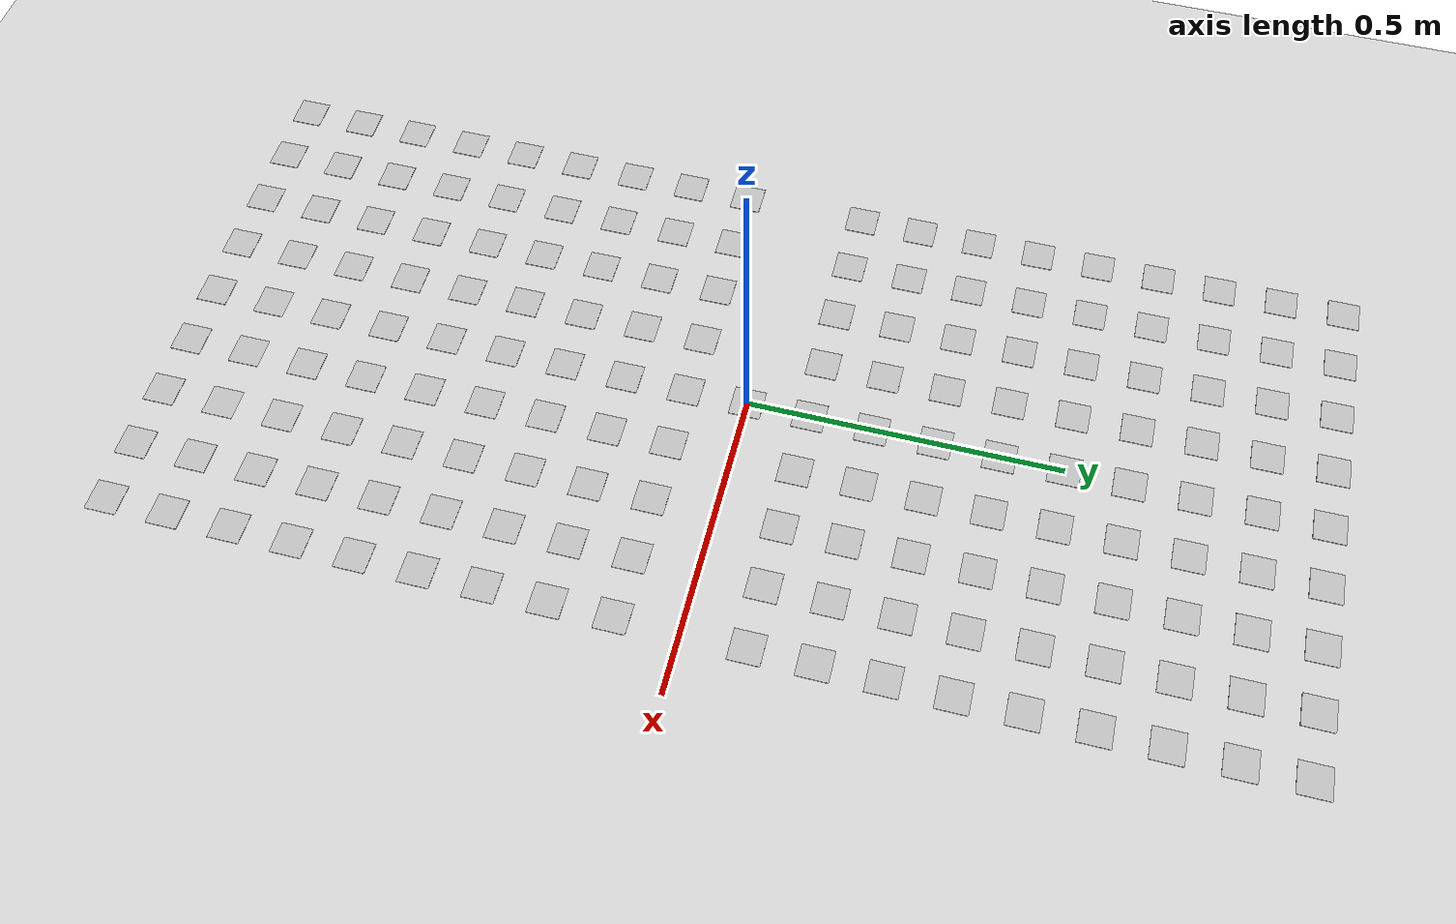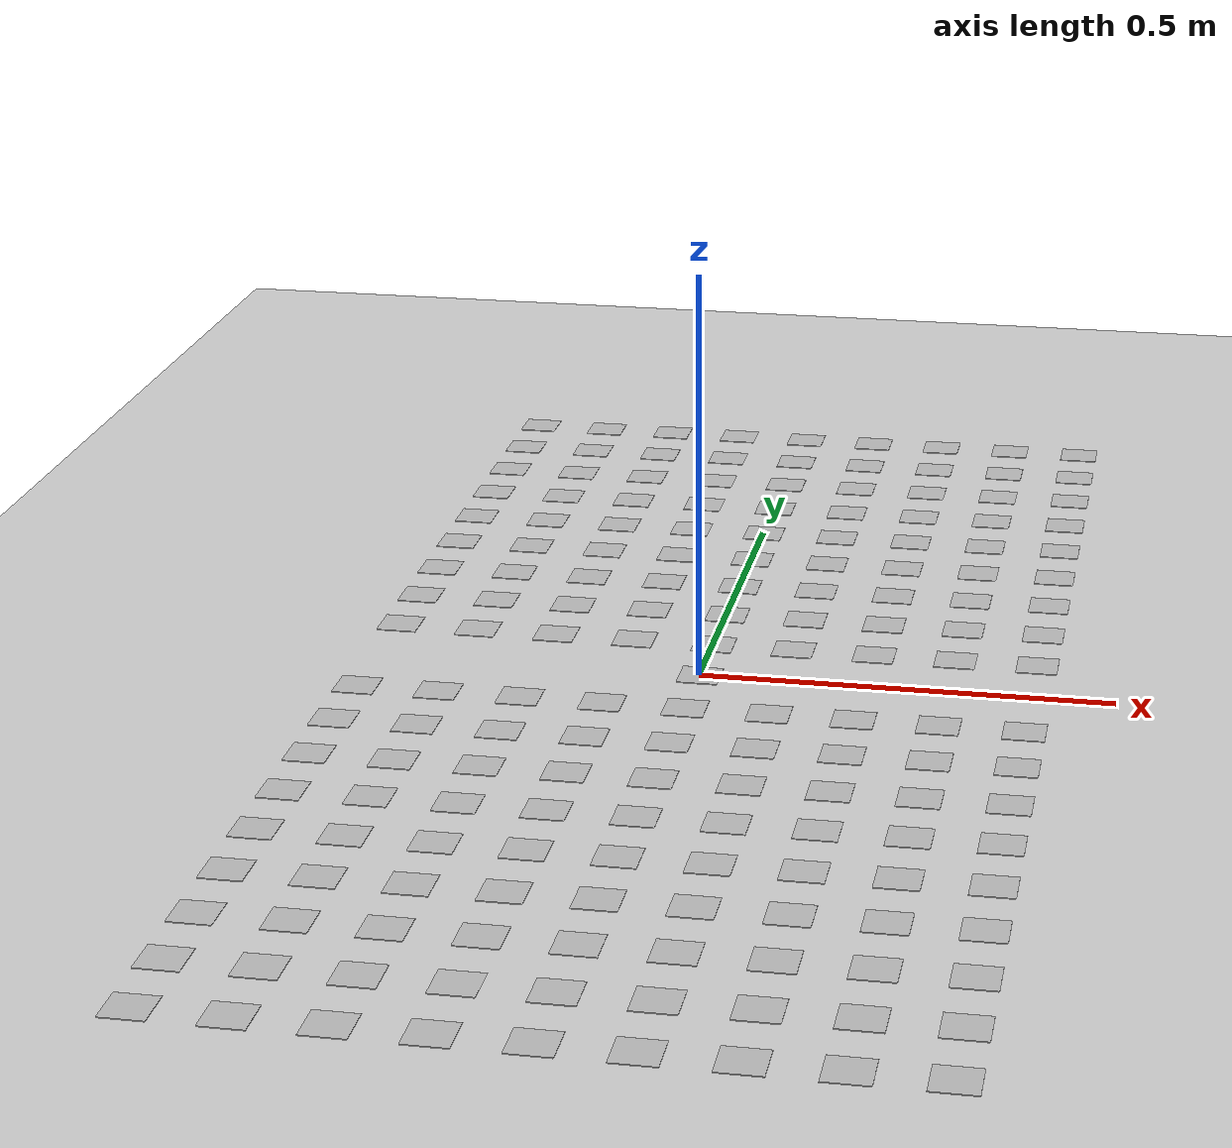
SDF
<sdf version="1.7">
 <world name="default">
  <light name="sun" type="directional">
   <pose>0 0 10 0 -0 0</pose>
   <diffuse>0.8 0.8 0.8 1</diffuse>
   <specular>0.2 0.2 0.2 1</specular>
   <attenuation>
    <range>1000</range>
    <constant>0.9</constant>
    <linear>0.01</linear>
    <quadratic>0.001</quadratic>
   </attenuation>
   <direction>-0.5 0.1 -0.9</direction>
   <spot><inner_angle>0</inner_angle><outer_angle>0</outer_angle><falloff>0</falloff></spot>
  </light>
  <model name="ground_plane">
   <static>1</static>
   <link name="link">
    <collision name="collision">
     <geometry><plane><normal>0 0 1</normal><size>100 100</size></plane></geometry>
     <surface>
      <contact><collide_bitmask>65535</collide_bitmask></contact>
      <friction><ode><mu>100</mu><mu2>50</mu2></ode></friction>
     </surface>
    </collision>
    <visual name="visual">
     <cast_shadows>0</cast_shadows>
     <geometry><plane><normal>0 0 1</normal><size>100 100</size></plane></geometry>
     <material>
      <script><uri>file://media/materials/scripts/gazebo.material</uri><name>Gazebo/Grey</name></script>
     </material>
    </visual>
   </link>
  </model>
  <gravity>0 0 -9.8</gravity>
  <magnetic_field>6e-06 2.3e-05 -4.2e-05</magnetic_field>
  <atmosphere type="adiabatic"/>
  <physics type="ode">
   <max_step_size>0.001</max_step_size>
   <real_time_factor>1</real_time_factor>
   <real_time_update_rate>1000</real_time_update_rate>
  </physics>
  <scene><ambient>0.4 0.4 0.4 1</ambient><background>0.7 0.7 0.7 1</background><shadows>1</shadows></scene>
  <spherical_coordinates>
   <surface_model>EARTH_WGS84</surface_model>
   <latitude_deg>0</latitude_deg>
   <longitude_deg>0</longitude_deg>
   <elevation>0</elevation>
   <heading_deg>0</heading_deg>
  </spherical_coordinates>
  <model name="QR01">
   <static>1</static>
   <link name="link">
    <visual name="visual">
     <geometry><mesh><uri>model://qr01/meshes/QR01.dae</uri><scale>0.1 0.1 0.1</scale></mesh></geometry>
    </visual>
   </link>
   <pose>0.025 0 0 3.14159 1.57079 -3e-06</pose>
  </model>
  <model name="QR01_clone">
   <static>1</static>
   <link name="link">
    <visual name="visual">
     <geometry><mesh><uri>model://qr01/meshes/QR01.dae</uri><scale>0.1 0.1 0.1</scale></mesh></geometry>
    </visual>
   </link>
   <pose>0.025 0.1 0 -3.14159 1.57079 -1e-06</pose>
  </model>
  <model name="QR01_clone_0">
   <static>1</static>
   <link name="link">
    <visual name="visual">
     <geometry><mesh><uri>model://qr01/meshes/QR01.dae</uri><scale>0.1 0.1 0.1</scale></mesh></geometry>
    </visual>
   </link>
   <pose>0.025 0.2 0 -3.14159 1.57079 -1e-06</pose>
  </model>
  <model name="QR01_clone_1">
   <static>1</static>
   <link name="link">
    <visual name="visual">
     <geometry><mesh><uri>model://qr01/meshes/QR01.dae</uri><scale>0.1 0.1 0.1</scale></mesh></geometry>
    </visual>
   </link>
   <pose>0.025 0.3 0 -3.14159 1.57079 -1e-06</pose>
  </model>
  <model name="QR01_clone_2">
   <static>1</static>
   <link name="link">
    <visual name="visual">
     <geometry><mesh><uri>model://qr01/meshes/QR01.dae</uri><scale>0.1 0.1 0.1</scale></mesh></geometry>
    </visual>
   </link>
   <pose>0.025 0.4 0 -3.14159 1.57079 -1e-06</pose>
  </model>
  <model name="QR01_clone_3">
   <static>1</static>
   <link name="link">
    <visual name="visual">
     <geometry><mesh><uri>model://qr01/meshes/QR01.dae</uri><scale>0.1 0.1 0.1</scale></mesh></geometry>
    </visual>
   </link>
   <pose>0.025 0.5 0 -3.14159 1.57079 -1e-06</pose>
  </model>
  <model name="QR01_clone_4">
   <static>1</static>
   <link name="link">
    <visual name="visual">
     <geometry><mesh><uri>model://qr01/meshes/QR01.dae</uri><scale>0.1 0.1 0.1</scale></mesh></geometry>
    </visual>
   </link>
   <pose>0.025 0.6 0 -3.14159 1.57079 -1e-06</pose>
  </model>
  <model name="QR01_clone_5">
   <static>1</static>
   <link name="link">
    <visual name="visual">
     <geometry><mesh><uri>model://qr01/meshes/QR01.dae</uri><scale>0.1 0.1 0.1</scale></mesh></geometry>
    </visual>
   </link>
   <pose>0.025 0.7 0 -3.14159 1.57079 -1e-06</pose>
  </model>
  <model name="QR01_clone_6">
   <static>1</static>
   <link name="link">
    <visual name="visual">
     <geometry><mesh><uri>model://qr01/meshes/QR01.dae</uri><scale>0.1 0.1 0.1</scale></mesh></geometry>
    </visual>
   </link>
   <pose>0.025 0.8 0 -3.14159 1.57079 -1e-06</pose>
  </model>
  <model name="QR01_clone_7">
   <static>1</static>
   <link name="link">
    <visual name="visual">
     <geometry><mesh><uri>model://qr01/meshes/QR01.dae</uri><scale>0.1 0.1 0.1</scale></mesh></geometry>
    </visual>
   </link>
   <pose>0.025 0.9 0 -3.14159 1.57079 -1e-06</pose>
  </model>
  <model name="QR01_clone_8">
   <static>1</static>
   <link name="link">
    <visual name="visual">
     <geometry><mesh><uri>model://qr01/meshes/QR01.dae</uri><scale>0.1 0.1 0.1</scale></mesh></geometry>
    </visual>
   </link>
   <pose>0.125 0.1 0 -3.14159 1.57079 -1e-06</pose>
  </model>
  <model name="QR01_clone_9">
   <static>1</static>
   <link name="link">
    <visual name="visual">
     <geometry><mesh><uri>model://qr01/meshes/QR01.dae</uri><scale>0.1 0.1 0.1</scale></mesh></geometry>
    </visual>
   </link>
   <pose>0.125 0.2 0 -3.14159 1.57079 -1e-06</pose>
  </model>
  <model name="QR01_clone_10">
   <static>1</static>
   <link name="link">
    <visual name="visual">
     <geometry><mesh><uri>model://qr01/meshes/QR01.dae</uri><scale>0.1 0.1 0.1</scale></mesh></geometry>
    </visual>
   </link>
   <pose>0.125 0.3 0 -3.14159 1.57079 -1e-06</pose>
  </model>
  <model name="QR01_clone_11">
   <static>1</static>
   <link name="link">
    <visual name="visual">
     <geometry><mesh><uri>model://qr01/meshes/QR01.dae</uri><scale>0.1 0.1 0.1</scale></mesh></geometry>
    </visual>
   </link>
   <pose>0.125 0.4 0 -3.14159 1.57079 -1e-06</pose>
  </model>
  <model name="QR01_clone_12">
   <static>1</static>
   <link name="link">
    <visual name="visual">
     <geometry><mesh><uri>model://qr01/meshes/QR01.dae</uri><scale>0.1 0.1 0.1</scale></mesh></geometry>
    </visual>
   </link>
   <pose>0.125 0.5 0 -3.14159 1.57079 -1e-06</pose>
  </model>
  <model name="QR01_clone_13">
   <static>1</static>
   <link name="link">
    <visual name="visual">
     <geometry><mesh><uri>model://qr01/meshes/QR01.dae</uri><scale>0.1 0.1 0.1</scale></mesh></geometry>
    </visual>
   </link>
   <pose>0.125 0.6 0 -3.14159 1.57079 -1e-06</pose>
  </model>
  <model name="QR01_clone_14">
   <static>1</static>
   <link name="link">
    <visual name="visual">
     <geometry><mesh><uri>model://qr01/meshes/QR01.dae</uri><scale>0.1 0.1 0.1</scale></mesh></geometry>
    </visual>
   </link>
   <pose>0.125 0.7 0 -3.14159 1.57079 -1e-06</pose>
  </model>
  <model name="QR01_clone_15">
   <static>1</static>
   <link name="link">
    <visual name="visual">
     <geometry><mesh><uri>model://qr01/meshes/QR01.dae</uri><scale>0.1 0.1 0.1</scale></mesh></geometry>
    </visual>
   </link>
   <pose>0.125 0.8 0 -3.14159 1.57079 -1e-06</pose>
  </model>
  <model name="QR01_clone_16">
   <static>1</static>
   <link name="link">
    <visual name="visual">
     <geometry><mesh><uri>model://qr01/meshes/QR01.dae</uri><scale>0.1 0.1 0.1</scale></mesh></geometry>
    </visual>
   </link>
   <pose>0.125 0.9 0 -3.14159 1.57079 -1e-06</pose>
  </model>
  <model name="QR01_clone_17">
   <static>1</static>
   <link name="link">
    <visual name="visual">
     <geometry><mesh><uri>model://qr01/meshes/QR01.dae</uri><scale>0.1 0.1 0.1</scale></mesh></geometry>
    </visual>
   </link>
   <pose>0.225 0.1 0 -3.14159 1.57079 -1e-06</pose>
  </model>
  <model name="QR01_clone_18">
   <static>1</static>
   <link name="link">
    <visual name="visual">
     <geometry><mesh><uri>model://qr01/meshes/QR01.dae</uri><scale>0.1 0.1 0.1</scale></mesh></geometry>
    </visual>
   </link>
   <pose>0.225 0.2 0 -3.14159 1.57079 -1e-06</pose>
  </model>
  <model name="QR01_clone_19">
   <static>1</static>
   <link name="link">
    <visual name="visual">
     <geometry><mesh><uri>model://qr01/meshes/QR01.dae</uri><scale>0.1 0.1 0.1</scale></mesh></geometry>
    </visual>
   </link>
   <pose>0.225 0.3 0 -3.14159 1.57079 -1e-06</pose>
  </model>
  <model name="QR01_clone_20">
   <static>1</static>
   <link name="link">
    <visual name="visual">
     <geometry><mesh><uri>model://qr01/meshes/QR01.dae</uri><scale>0.1 0.1 0.1</scale></mesh></geometry>
    </visual>
   </link>
   <pose>0.225 0.4 0 -3.14159 1.57079 -1e-06</pose>
  </model>
  <model name="QR01_clone_21">
   <static>1</static>
   <link name="link">
    <visual name="visual">
     <geometry><mesh><uri>model://qr01/meshes/QR01.dae</uri><scale>0.1 0.1 0.1</scale></mesh></geometry>
    </visual>
   </link>
   <pose>0.225 0.5 0 -3.14159 1.57079 -1e-06</pose>
  </model>
  <model name="QR01_clone_22">
   <static>1</static>
   <link name="link">
    <visual name="visual">
     <geometry><mesh><uri>model://qr01/meshes/QR01.dae</uri><scale>0.1 0.1 0.1</scale></mesh></geometry>
    </visual>
   </link>
   <pose>0.225 0.6 0 -3.14159 1.57079 -1e-06</pose>
  </model>
  <model name="QR01_clone_23">
   <static>1</static>
   <link name="link">
    <visual name="visual">
     <geometry><mesh><uri>model://qr01/meshes/QR01.dae</uri><scale>0.1 0.1 0.1</scale></mesh></geometry>
    </visual>
   </link>
   <pose>0.225 0.7 0 -3.14159 1.57079 -1e-06</pose>
  </model>
  <model name="QR01_clone_24">
   <static>1</static>
   <link name="link">
    <visual name="visual">
     <geometry><mesh><uri>model://qr01/meshes/QR01.dae</uri><scale>0.1 0.1 0.1</scale></mesh></geometry>
    </visual>
   </link>
   <pose>0.225 0.8 0 -3.14159 1.57079 -1e-06</pose>
  </model>
  <model name="QR01_clone_25">
   <static>1</static>
   <link name="link">
    <visual name="visual">
     <geometry><mesh><uri>model://qr01/meshes/QR01.dae</uri><scale>0.1 0.1 0.1</scale></mesh></geometry>
    </visual>
   </link>
   <pose>0.225 0.9 0 -3.14159 1.57079 -1e-06</pose>
  </model>
  <model name="QR01_clone_26">
   <static>1</static>
   <link name="link">
    <visual name="visual">
     <geometry><mesh><uri>model://qr01/meshes/QR01.dae</uri><scale>0.1 0.1 0.1</scale></mesh></geometry>
    </visual>
   </link>
   <pose>0.325 0.1 0 -3.14159 1.57079 -1e-06</pose>
  </model>
  <model name="QR01_clone_27">
   <static>1</static>
   <link name="link">
    <visual name="visual">
     <geometry><mesh><uri>model://qr01/meshes/QR01.dae</uri><scale>0.1 0.1 0.1</scale></mesh></geometry>
    </visual>
   </link>
   <pose>0.325 0.2 0 -3.14159 1.57079 -1e-06</pose>
  </model>
  <model name="QR01_clone_28">
   <static>1</static>
   <link name="link">
    <visual name="visual">
     <geometry><mesh><uri>model://qr01/meshes/QR01.dae</uri><scale>0.1 0.1 0.1</scale></mesh></geometry>
    </visual>
   </link>
   <pose>0.325 0.3 0 -3.14159 1.57079 -1e-06</pose>
  </model>
  <model name="QR01_clone_29">
   <static>1</static>
   <link name="link">
    <visual name="visual">
     <geometry><mesh><uri>model://qr01/meshes/QR01.dae</uri><scale>0.1 0.1 0.1</scale></mesh></geometry>
    </visual>
   </link>
   <pose>0.325 0.4 0 -3.14159 1.57079 -1e-06</pose>
  </model>
  <model name="QR01_clone_30">
   <static>1</static>
   <link name="link">
    <visual name="visual">
     <geometry><mesh><uri>model://qr01/meshes/QR01.dae</uri><scale>0.1 0.1 0.1</scale></mesh></geometry>
    </visual>
   </link>
   <pose>0.325 0.5 0 -3.14159 1.57079 -1e-06</pose>
  </model>
  <model name="QR01_clone_31">
   <static>1</static>
   <link name="link">
    <visual name="visual">
     <geometry><mesh><uri>model://qr01/meshes/QR01.dae</uri><scale>0.1 0.1 0.1</scale></mesh></geometry>
    </visual>
   </link>
   <pose>0.325 0.6 0 -3.14159 1.57079 -1e-06</pose>
  </model>
  <model name="QR01_clone_32">
   <static>1</static>
   <link name="link">
    <visual name="visual">
     <geometry><mesh><uri>model://qr01/meshes/QR01.dae</uri><scale>0.1 0.1 0.1</scale></mesh></geometry>
    </visual>
   </link>
   <pose>0.325 0.7 0 -3.14159 1.57079 -1e-06</pose>
  </model>
  <model name="QR01_clone_33">
   <static>1</static>
   <link name="link">
    <visual name="visual">
     <geometry><mesh><uri>model://qr01/meshes/QR01.dae</uri><scale>0.1 0.1 0.1</scale></mesh></geometry>
    </visual>
   </link>
   <pose>0.325 0.8 0 -3.14159 1.57079 -1e-06</pose>
  </model>
  <model name="QR01_clone_34">
   <static>1</static>
   <link name="link">
    <visual name="visual">
     <geometry><mesh><uri>model://qr01/meshes/QR01.dae</uri><scale>0.1 0.1 0.1</scale></mesh></geometry>
    </visual>
   </link>
   <pose>0.325 0.9 0 -3.14159 1.57079 -1e-06</pose>
  </model>
  <model name="QR01_clone_35">
   <static>1</static>
   <link name="link">
    <visual name="visual">
     <geometry><mesh><uri>model://qr01/meshes/QR01.dae</uri><scale>0.1 0.1 0.1</scale></mesh></geometry>
    </visual>
   </link>
   <pose>0.425 0.9 0 -3.14159 1.57079 -1e-06</pose>
  </model>
  <model name="QR01_clone_36">
   <static>1</static>
   <link name="link">
    <visual name="visual">
     <geometry><mesh><uri>model://qr01/meshes/QR01.dae</uri><scale>0.1 0.1 0.1</scale></mesh></geometry>
    </visual>
   </link>
   <pose>0.425 0.8 0 -3.14159 1.57079 -1e-06</pose>
  </model>
  <model name="QR01_clone_37">
   <static>1</static>
   <link name="link">
    <visual name="visual">
     <geometry><mesh><uri>model://qr01/meshes/QR01.dae</uri><scale>0.1 0.1 0.1</scale></mesh></geometry>
    </visual>
   </link>
   <pose>0.425 0.7 0 -3.14159 1.57079 -1e-06</pose>
  </model>
  <model name="QR01_clone_38">
   <static>1</static>
   <link name="link">
    <visual name="visual">
     <geometry><mesh><uri>model://qr01/meshes/QR01.dae</uri><scale>0.1 0.1 0.1</scale></mesh></geometry>
    </visual>
   </link>
   <pose>0.425 0.6 0 -3.14159 1.57079 -1e-06</pose>
  </model>
  <model name="QR01_clone_39">
   <static>1</static>
   <link name="link">
    <visual name="visual">
     <geometry><mesh><uri>model://qr01/meshes/QR01.dae</uri><scale>0.1 0.1 0.1</scale></mesh></geometry>
    </visual>
   </link>
   <pose>0.425 0.5 0 -3.14159 1.57079 -1e-06</pose>
  </model>
  <model name="QR01_clone_40">
   <static>1</static>
   <link name="link">
    <visual name="visual">
     <geometry><mesh><uri>model://qr01/meshes/QR01.dae</uri><scale>0.1 0.1 0.1</scale></mesh></geometry>
    </visual>
   </link>
   <pose>0.425 0.4 0 -3.14159 1.57079 -1e-06</pose>
  </model>
  <model name="QR01_clone_41">
   <static>1</static>
   <link name="link">
    <visual name="visual">
     <geometry><mesh><uri>model://qr01/meshes/QR01.dae</uri><scale>0.1 0.1 0.1</scale></mesh></geometry>
    </visual>
   </link>
   <pose>0.425 0.3 0 -3.14159 1.57079 -1e-06</pose>
  </model>
  <model name="QR01_clone_42">
   <static>1</static>
   <link name="link">
    <visual name="visual">
     <geometry><mesh><uri>model://qr01/meshes/QR01.dae</uri><scale>0.1 0.1 0.1</scale></mesh></geometry>
    </visual>
   </link>
   <pose>0.425 0.2 0 -3.14159 1.57079 -1e-06</pose>
  </model>
  <model name="QR01_clone_43">
   <static>1</static>
   <link name="link">
    <visual name="visual">
     <geometry><mesh><uri>model://qr01/meshes/QR01.dae</uri><scale>0.1 0.1 0.1</scale></mesh></geometry>
    </visual>
   </link>
   <pose>0.425 0.1 0 -3.14159 1.57079 -1e-06</pose>
  </model>
  <model name="QR01_clone_44">
   <static>1</static>
   <link name="link">
    <visual name="visual">
     <geometry><mesh><uri>model://qr01/meshes/QR01.dae</uri><scale>0.1 0.1 0.1</scale></mesh></geometry>
    </visual>
   </link>
   <pose>-0.075 0.9 0 -3.14159 1.57079 -1e-06</pose>
  </model>
  <model name="QR01_clone_45">
   <static>1</static>
   <link name="link">
    <visual name="visual">
     <geometry><mesh><uri>model://qr01/meshes/QR01.dae</uri><scale>0.1 0.1 0.1</scale></mesh></geometry>
    </visual>
   </link>
   <pose>-0.075 0.8 0 -3.14159 1.57079 -1e-06</pose>
  </model>
  <model name="QR01_clone_46">
   <static>1</static>
   <link name="link">
    <visual name="visual">
     <geometry><mesh><uri>model://qr01/meshes/QR01.dae</uri><scale>0.1 0.1 0.1</scale></mesh></geometry>
    </visual>
   </link>
   <pose>-0.075 0.7 0 -3.14159 1.57079 -1e-06</pose>
  </model>
  <model name="QR01_clone_47">
   <static>1</static>
   <link name="link">
    <visual name="visual">
     <geometry><mesh><uri>model://qr01/meshes/QR01.dae</uri><scale>0.1 0.1 0.1</scale></mesh></geometry>
    </visual>
   </link>
   <pose>-0.075 0.6 0 -3.14159 1.57079 -1e-06</pose>
  </model>
  <model name="QR01_clone_48">
   <static>1</static>
   <link name="link">
    <visual name="visual">
     <geometry><mesh><uri>model://qr01/meshes/QR01.dae</uri><scale>0.1 0.1 0.1</scale></mesh></geometry>
    </visual>
   </link>
   <pose>-0.075 0.5 0 -3.14159 1.57079 -1e-06</pose>
  </model>
  <model name="QR01_clone_49">
   <static>1</static>
   <link name="link">
    <visual name="visual">
     <geometry><mesh><uri>model://qr01/meshes/QR01.dae</uri><scale>0.1 0.1 0.1</scale></mesh></geometry>
    </visual>
   </link>
   <pose>-0.075 0.4 0 -3.14159 1.57079 -1e-06</pose>
  </model>
  <model name="QR01_clone_50">
   <static>1</static>
   <link name="link">
    <visual name="visual">
     <geometry><mesh><uri>model://qr01/meshes/QR01.dae</uri><scale>0.1 0.1 0.1</scale></mesh></geometry>
    </visual>
   </link>
   <pose>-0.075 0.3 0 -3.14159 1.57079 -1e-06</pose>
  </model>
  <model name="QR01_clone_51">
   <static>1</static>
   <link name="link">
    <visual name="visual">
     <geometry><mesh><uri>model://qr01/meshes/QR01.dae</uri><scale>0.1 0.1 0.1</scale></mesh></geometry>
    </visual>
   </link>
   <pose>-0.075 0.2 0 -3.14159 1.57079 -1e-06</pose>
  </model>
  <model name="QR01_clone_52">
   <static>1</static>
   <link name="link">
    <visual name="visual">
     <geometry><mesh><uri>model://qr01/meshes/QR01.dae</uri><scale>0.1 0.1 0.1</scale></mesh></geometry>
    </visual>
   </link>
   <pose>-0.075 0.1 0 -3.14159 1.57079 -1e-06</pose>
  </model>
  <model name="QR01_clone_53">
   <static>1</static>
   <link name="link">
    <visual name="visual">
     <geometry><mesh><uri>model://qr01/meshes/QR01.dae</uri><scale>0.1 0.1 0.1</scale></mesh></geometry>
    </visual>
   </link>
   <pose>-0.175 0.1 0 -3.14159 1.57079 -1e-06</pose>
  </model>
  <model name="QR01_clone_54">
   <static>1</static>
   <link name="link">
    <visual name="visual">
     <geometry><mesh><uri>model://qr01/meshes/QR01.dae</uri><scale>0.1 0.1 0.1</scale></mesh></geometry>
    </visual>
   </link>
   <pose>-0.175 0.2 0 -3.14159 1.57079 -1e-06</pose>
  </model>
  <model name="QR01_clone_55">
   <static>1</static>
   <link name="link">
    <visual name="visual">
     <geometry><mesh><uri>model://qr01/meshes/QR01.dae</uri><scale>0.1 0.1 0.1</scale></mesh></geometry>
    </visual>
   </link>
   <pose>-0.175 0.3 0 -3.14159 1.57079 -1e-06</pose>
  </model>
  <model name="QR01_clone_56">
   <static>1</static>
   <link name="link">
    <visual name="visual">
     <geometry><mesh><uri>model://qr01/meshes/QR01.dae</uri><scale>0.1 0.1 0.1</scale></mesh></geometry>
    </visual>
   </link>
   <pose>-0.175 0.4 0 -3.14159 1.57079 -1e-06</pose>
  </model>
  <model name="QR01_clone_57">
   <static>1</static>
   <link name="link">
    <visual name="visual">
     <geometry><mesh><uri>model://qr01/meshes/QR01.dae</uri><scale>0.1 0.1 0.1</scale></mesh></geometry>
    </visual>
   </link>
   <pose>-0.175 0.5 0 -3.14159 1.57079 -1e-06</pose>
  </model>
  <model name="QR01_clone_58">
   <static>1</static>
   <link name="link">
    <visual name="visual">
     <geometry><mesh><uri>model://qr01/meshes/QR01.dae</uri><scale>0.1 0.1 0.1</scale></mesh></geometry>
    </visual>
   </link>
   <pose>-0.175 0.6 0 -3.14159 1.57079 -1e-06</pose>
  </model>
  <model name="QR01_clone_59">
   <static>1</static>
   <link name="link">
    <visual name="visual">
     <geometry><mesh><uri>model://qr01/meshes/QR01.dae</uri><scale>0.1 0.1 0.1</scale></mesh></geometry>
    </visual>
   </link>
   <pose>-0.175 0.7 0 -3.14159 1.57079 -1e-06</pose>
  </model>
  <model name="QR01_clone_60">
   <static>1</static>
   <link name="link">
    <visual name="visual">
     <geometry><mesh><uri>model://qr01/meshes/QR01.dae</uri><scale>0.1 0.1 0.1</scale></mesh></geometry>
    </visual>
   </link>
   <pose>-0.175 0.8 0 -3.14159 1.57079 -1e-06</pose>
  </model>
  <model name="QR01_clone_61">
   <static>1</static>
   <link name="link">
    <visual name="visual">
     <geometry><mesh><uri>model://qr01/meshes/QR01.dae</uri><scale>0.1 0.1 0.1</scale></mesh></geometry>
    </visual>
   </link>
   <pose>-0.175 0.9 0 -3.14159 1.57079 -1e-06</pose>
  </model>
  <model name="QR01_clone_62">
   <static>1</static>
   <link name="link">
    <visual name="visual">
     <geometry><mesh><uri>model://qr01/meshes/QR01.dae</uri><scale>0.1 0.1 0.1</scale></mesh></geometry>
    </visual>
   </link>
   <pose>-0.275 0.9 0 -3.14159 1.57079 -1e-06</pose>
  </model>
  <model name="QR01_clone_63">
   <static>1</static>
   <link name="link">
    <visual name="visual">
     <geometry><mesh><uri>model://qr01/meshes/QR01.dae</uri><scale>0.1 0.1 0.1</scale></mesh></geometry>
    </visual>
   </link>
   <pose>-0.275 0.8 0 -3.14159 1.57079 -1e-06</pose>
  </model>
  <model name="QR01_clone_64">
   <static>1</static>
   <link name="link">
    <visual name="visual">
     <geometry><mesh><uri>model://qr01/meshes/QR01.dae</uri><scale>0.1 0.1 0.1</scale></mesh></geometry>
    </visual>
   </link>
   <pose>-0.275 0.7 0 -3.14159 1.57079 -1e-06</pose>
  </model>
  <model name="QR01_clone_65">
   <static>1</static>
   <link name="link">
    <visual name="visual">
     <geometry><mesh><uri>model://qr01/meshes/QR01.dae</uri><scale>0.1 0.1 0.1</scale></mesh></geometry>
    </visual>
   </link>
   <pose>-0.275 0.6 0 -3.14159 1.57079 -1e-06</pose>
  </model>
  <model name="QR01_clone_66">
   <static>1</static>
   <link name="link">
    <visual name="visual">
     <geometry><mesh><uri>model://qr01/meshes/QR01.dae</uri><scale>0.1 0.1 0.1</scale></mesh></geometry>
    </visual>
   </link>
   <pose>-0.275 0.5 0 -3.14159 1.57079 -1e-06</pose>
  </model>
  <model name="QR01_clone_67">
   <static>1</static>
   <link name="link">
    <visual name="visual">
     <geometry><mesh><uri>model://qr01/meshes/QR01.dae</uri><scale>0.1 0.1 0.1</scale></mesh></geometry>
    </visual>
   </link>
   <pose>-0.275 0.4 0 -3.14159 1.57079 -1e-06</pose>
  </model>
  <model name="QR01_clone_68">
   <static>1</static>
   <link name="link">
    <visual name="visual">
     <geometry><mesh><uri>model://qr01/meshes/QR01.dae</uri><scale>0.1 0.1 0.1</scale></mesh></geometry>
    </visual>
   </link>
   <pose>-0.275 0.3 0 -3.14159 1.57079 -1e-06</pose>
  </model>
  <model name="QR01_clone_69">
   <static>1</static>
   <link name="link">
    <visual name="visual">
     <geometry><mesh><uri>model://qr01/meshes/QR01.dae</uri><scale>0.1 0.1 0.1</scale></mesh></geometry>
    </visual>
   </link>
   <pose>-0.275 0.2 0 -3.14159 1.57079 -1e-06</pose>
  </model>
  <model name="QR01_clone_70">
   <static>1</static>
   <link name="link">
    <visual name="visual">
     <geometry><mesh><uri>model://qr01/meshes/QR01.dae</uri><scale>0.1 0.1 0.1</scale></mesh></geometry>
    </visual>
   </link>
   <pose>-0.275 0.1 0 -3.14159 1.57079 -1e-06</pose>
  </model>
  <model name="QR01_clone_71">
   <static>1</static>
   <link name="link">
    <visual name="visual">
     <geometry><mesh><uri>model://qr01/meshes/QR01.dae</uri><scale>0.1 0.1 0.1</scale></mesh></geometry>
    </visual>
   </link>
   <pose>-0.375 0.1 0 -3.14159 1.57079 -1e-06</pose>
  </model>
  <model name="QR01_clone_72">
   <static>1</static>
   <link name="link">
    <visual name="visual">
     <geometry><mesh><uri>model://qr01/meshes/QR01.dae</uri><scale>0.1 0.1 0.1</scale></mesh></geometry>
    </visual>
   </link>
   <pose>-0.375 0.2 0 -3.14159 1.57079 -1e-06</pose>
  </model>
  <model name="QR01_clone_73">
   <static>1</static>
   <link name="link">
    <visual name="visual">
     <geometry><mesh><uri>model://qr01/meshes/QR01.dae</uri><scale>0.1 0.1 0.1</scale></mesh></geometry>
    </visual>
   </link>
   <pose>-0.375 0.3 0 -3.14159 1.57079 -1e-06</pose>
  </model>
  <model name="QR01_clone_74">
   <static>1</static>
   <link name="link">
    <visual name="visual">
     <geometry><mesh><uri>model://qr01/meshes/QR01.dae</uri><scale>0.1 0.1 0.1</scale></mesh></geometry>
    </visual>
   </link>
   <pose>-0.375 0.4 0 -3.14159 1.57079 -1e-06</pose>
  </model>
  <model name="QR01_clone_75">
   <static>1</static>
   <link name="link">
    <visual name="visual">
     <geometry><mesh><uri>model://qr01/meshes/QR01.dae</uri><scale>0.1 0.1 0.1</scale></mesh></geometry>
    </visual>
   </link>
   <pose>-0.375 0.5 0 -3.14159 1.57079 -1e-06</pose>
  </model>
  <model name="QR01_clone_76">
   <static>1</static>
   <link name="link">
    <visual name="visual">
     <geometry><mesh><uri>model://qr01/meshes/QR01.dae</uri><scale>0.1 0.1 0.1</scale></mesh></geometry>
    </visual>
   </link>
   <pose>-0.375 0.6 0 -3.14159 1.57079 -1e-06</pose>
  </model>
  <model name="QR01_clone_77">
   <static>1</static>
   <link name="link">
    <visual name="visual">
     <geometry><mesh><uri>model://qr01/meshes/QR01.dae</uri><scale>0.1 0.1 0.1</scale></mesh></geometry>
    </visual>
   </link>
   <pose>-0.375 0.7 0 -3.14159 1.57079 -1e-06</pose>
  </model>
  <model name="QR01_clone_78">
   <static>1</static>
   <link name="link">
    <visual name="visual">
     <geometry><mesh><uri>model://qr01/meshes/QR01.dae</uri><scale>0.1 0.1 0.1</scale></mesh></geometry>
    </visual>
   </link>
   <pose>-0.375 0.8 0 -3.14159 1.57079 -1e-06</pose>
  </model>
  <model name="QR01_clone_79">
   <static>1</static>
   <link name="link">
    <visual name="visual">
     <geometry><mesh><uri>model://qr01/meshes/QR01.dae</uri><scale>0.1 0.1 0.1</scale></mesh></geometry>
    </visual>
   </link>
   <pose>-0.375 0.9 0 -3.14159 1.57079 -1e-06</pose>
  </model>
  <model name="QR01_clone_80">
   <static>1</static>
   <link name="link">
    <visual name="visual">
     <geometry><mesh><uri>model://qr01/meshes/QR01.dae</uri><scale>0.1 0.1 0.1</scale></mesh></geometry>
    </visual>
   </link>
   <pose>0.425 -0.1 0 -3.14159 1.57079 -1e-06</pose>
  </model>
  <model name="QR01_clone_81">
   <static>1</static>
   <link name="link">
    <visual name="visual">
     <geometry><mesh><uri>model://qr01/meshes/QR01.dae</uri><scale>0.1 0.1 0.1</scale></mesh></geometry>
    </visual>
   </link>
   <pose>0.425 -0.2 0 -3.14159 1.57079 -1e-06</pose>
  </model>
  <model name="QR01_clone_82">
   <static>1</static>
   <link name="link">
    <visual name="visual">
     <geometry><mesh><uri>model://qr01/meshes/QR01.dae</uri><scale>0.1 0.1 0.1</scale></mesh></geometry>
    </visual>
   </link>
   <pose>0.425 -0.3 0 -3.14159 1.57079 -1e-06</pose>
  </model>
  <model name="QR01_clone_83">
   <static>1</static>
   <link name="link">
    <visual name="visual">
     <geometry><mesh><uri>model://qr01/meshes/QR01.dae</uri><scale>0.1 0.1 0.1</scale></mesh></geometry>
    </visual>
   </link>
   <pose>0.425 -0.4 0 -3.14159 1.57079 -1e-06</pose>
  </model>
  <model name="QR01_clone_84">
   <static>1</static>
   <link name="link">
    <visual name="visual">
     <geometry><mesh><uri>model://qr01/meshes/QR01.dae</uri><scale>0.1 0.1 0.1</scale></mesh></geometry>
    </visual>
   </link>
   <pose>0.425 -0.5 0 -3.14159 1.57079 -1e-06</pose>
  </model>
  <model name="QR01_clone_85">
   <static>1</static>
   <link name="link">
    <visual name="visual">
     <geometry><mesh><uri>model://qr01/meshes/QR01.dae</uri><scale>0.1 0.1 0.1</scale></mesh></geometry>
    </visual>
   </link>
   <pose>0.425 -0.6 0 -3.14159 1.57079 -1e-06</pose>
  </model>
  <model name="QR01_clone_86">
   <static>1</static>
   <link name="link">
    <visual name="visual">
     <geometry><mesh><uri>model://qr01/meshes/QR01.dae</uri><scale>0.1 0.1 0.1</scale></mesh></geometry>
    </visual>
   </link>
   <pose>0.425 -0.7 0 -3.14159 1.57079 -1e-06</pose>
  </model>
  <model name="QR01_clone_87">
   <static>1</static>
   <link name="link">
    <visual name="visual">
     <geometry><mesh><uri>model://qr01/meshes/QR01.dae</uri><scale>0.1 0.1 0.1</scale></mesh></geometry>
    </visual>
   </link>
   <pose>0.425 -0.8 0 -3.14159 1.57079 -1e-06</pose>
  </model>
  <model name="QR01_clone_88">
   <static>1</static>
   <link name="link">
    <visual name="visual">
     <geometry><mesh><uri>model://qr01/meshes/QR01.dae</uri><scale>0.1 0.1 0.1</scale></mesh></geometry>
    </visual>
   </link>
   <pose>0.425 -0.9 0 -3.14159 1.57079 -1e-06</pose>
  </model>
  <model name="QR01_clone_89">
   <static>1</static>
   <link name="link">
    <visual name="visual">
     <geometry><mesh><uri>model://qr01/meshes/QR01.dae</uri><scale>0.1 0.1 0.1</scale></mesh></geometry>
    </visual>
   </link>
   <pose>0.325 -0.1 0 -3.14159 1.57079 -1e-06</pose>
  </model>
  <model name="QR01_clone_90">
   <static>1</static>
   <link name="link">
    <visual name="visual">
     <geometry><mesh><uri>model://qr01/meshes/QR01.dae</uri><scale>0.1 0.1 0.1</scale></mesh></geometry>
    </visual>
   </link>
   <pose>0.325 -0.2 0 -3.14159 1.57079 -1e-06</pose>
  </model>
  <model name="QR01_clone_91">
   <static>1</static>
   <link name="link">
    <visual name="visual">
     <geometry><mesh><uri>model://qr01/meshes/QR01.dae</uri><scale>0.1 0.1 0.1</scale></mesh></geometry>
    </visual>
   </link>
   <pose>0.325 -0.3 0 -3.14159 1.57079 -1e-06</pose>
  </model>
  <model name="QR01_clone_92">
   <static>1</static>
   <link name="link">
    <visual name="visual">
     <geometry><mesh><uri>model://qr01/meshes/QR01.dae</uri><scale>0.1 0.1 0.1</scale></mesh></geometry>
    </visual>
   </link>
   <pose>0.325 -0.4 0 -3.14159 1.57079 -1e-06</pose>
  </model>
  <model name="QR01_clone_93">
   <static>1</static>
   <link name="link">
    <visual name="visual">
     <geometry><mesh><uri>model://qr01/meshes/QR01.dae</uri><scale>0.1 0.1 0.1</scale></mesh></geometry>
    </visual>
   </link>
   <pose>0.325 -0.5 0 -3.14159 1.57079 -1e-06</pose>
  </model>
  <model name="QR01_clone_94">
   <static>1</static>
   <link name="link">
    <visual name="visual">
     <geometry><mesh><uri>model://qr01/meshes/QR01.dae</uri><scale>0.1 0.1 0.1</scale></mesh></geometry>
    </visual>
   </link>
   <pose>0.325 -0.6 0 -3.14159 1.57079 -1e-06</pose>
  </model>
  <model name="QR01_clone_95">
   <static>1</static>
   <link name="link">
    <visual name="visual">
     <geometry><mesh><uri>model://qr01/meshes/QR01.dae</uri><scale>0.1 0.1 0.1</scale></mesh></geometry>
    </visual>
   </link>
   <pose>0.325 -0.7 0 -3.14159 1.57079 -1e-06</pose>
  </model>
  <model name="QR01_clone_96">
   <static>1</static>
   <link name="link">
    <visual name="visual">
     <geometry><mesh><uri>model://qr01/meshes/QR01.dae</uri><scale>0.1 0.1 0.1</scale></mesh></geometry>
    </visual>
   </link>
   <pose>0.325 -0.8 0 -3.14159 1.57079 -1e-06</pose>
  </model>
  <model name="QR01_clone_97">
   <static>1</static>
   <link name="link">
    <visual name="visual">
     <geometry><mesh><uri>model://qr01/meshes/QR01.dae</uri><scale>0.1 0.1 0.1</scale></mesh></geometry>
    </visual>
   </link>
   <pose>0.325 -0.9 0 -3.14159 1.57079 -1e-06</pose>
  </model>
  <model name="QR01_clone_98">
   <static>1</static>
   <link name="link">
    <visual name="visual">
     <geometry><mesh><uri>model://qr01/meshes/QR01.dae</uri><scale>0.1 0.1 0.1</scale></mesh></geometry>
    </visual>
   </link>
   <pose>0.225 -0.1 0 -3.14159 1.57079 -1e-06</pose>
  </model>
  <model name="QR01_clone_99">
   <static>1</static>
   <link name="link">
    <visual name="visual">
     <geometry><mesh><uri>model://qr01/meshes/QR01.dae</uri><scale>0.1 0.1 0.1</scale></mesh></geometry>
    </visual>
   </link>
   <pose>0.225 -0.2 0 -3.14159 1.57079 -1e-06</pose>
  </model>
  <model name="QR01_clone_100">
   <static>1</static>
   <link name="link">
    <visual name="visual">
     <geometry><mesh><uri>model://qr01/meshes/QR01.dae</uri><scale>0.1 0.1 0.1</scale></mesh></geometry>
    </visual>
   </link>
   <pose>0.225 -0.3 0 -3.14159 1.57079 -1e-06</pose>
  </model>
  <model name="QR01_clone_101">
   <static>1</static>
   <link name="link">
    <visual name="visual">
     <geometry><mesh><uri>model://qr01/meshes/QR01.dae</uri><scale>0.1 0.1 0.1</scale></mesh></geometry>
    </visual>
   </link>
   <pose>0.225 -0.4 0 -3.14159 1.57079 -1e-06</pose>
  </model>
  <model name="QR01_clone_102">
   <static>1</static>
   <link name="link">
    <visual name="visual">
     <geometry><mesh><uri>model://qr01/meshes/QR01.dae</uri><scale>0.1 0.1 0.1</scale></mesh></geometry>
    </visual>
   </link>
   <pose>0.225 -0.5 0 -3.14159 1.57079 -1e-06</pose>
  </model>
  <model name="QR01_clone_103">
   <static>1</static>
   <link name="link">
    <visual name="visual">
     <geometry><mesh><uri>model://qr01/meshes/QR01.dae</uri><scale>0.1 0.1 0.1</scale></mesh></geometry>
    </visual>
   </link>
   <pose>0.225 -0.6 0 -3.14159 1.57079 -1e-06</pose>
  </model>
  <model name="QR01_clone_104">
   <static>1</static>
   <link name="link">
    <visual name="visual">
     <geometry><mesh><uri>model://qr01/meshes/QR01.dae</uri><scale>0.1 0.1 0.1</scale></mesh></geometry>
    </visual>
   </link>
   <pose>0.225 -0.7 0 -3.14159 1.57079 -1e-06</pose>
  </model>
  <model name="QR01_clone_105">
   <static>1</static>
   <link name="link">
    <visual name="visual">
     <geometry><mesh><uri>model://qr01/meshes/QR01.dae</uri><scale>0.1 0.1 0.1</scale></mesh></geometry>
    </visual>
   </link>
   <pose>0.225 -0.8 0 -3.14159 1.57079 -1e-06</pose>
  </model>
  <model name="QR01_clone_106">
   <static>1</static>
   <link name="link">
    <visual name="visual">
     <geometry><mesh><uri>model://qr01/meshes/QR01.dae</uri><scale>0.1 0.1 0.1</scale></mesh></geometry>
    </visual>
   </link>
   <pose>0.225 -0.9 0 -3.14159 1.57079 -1e-06</pose>
  </model>
  <model name="QR01_clone_107">
   <static>1</static>
   <link name="link">
    <visual name="visual">
     <geometry><mesh><uri>model://qr01/meshes/QR01.dae</uri><scale>0.1 0.1 0.1</scale></mesh></geometry>
    </visual>
   </link>
   <pose>0.125 -0.1 0 -3.14159 1.57079 -1e-06</pose>
  </model>
  <model name="QR01_clone_108">
   <static>1</static>
   <link name="link">
    <visual name="visual">
     <geometry><mesh><uri>model://qr01/meshes/QR01.dae</uri><scale>0.1 0.1 0.1</scale></mesh></geometry>
    </visual>
   </link>
   <pose>0.125 -0.2 0 -3.14159 1.57079 -1e-06</pose>
  </model>
  <model name="QR01_clone_109">
   <static>1</static>
   <link name="link">
    <visual name="visual">
     <geometry><mesh><uri>model://qr01/meshes/QR01.dae</uri><scale>0.1 0.1 0.1</scale></mesh></geometry>
    </visual>
   </link>
   <pose>0.125 -0.3 0 -3.14159 1.57079 -1e-06</pose>
  </model>
  <model name="QR01_clone_110">
   <static>1</static>
   <link name="link">
    <visual name="visual">
     <geometry><mesh><uri>model://qr01/meshes/QR01.dae</uri><scale>0.1 0.1 0.1</scale></mesh></geometry>
    </visual>
   </link>
   <pose>0.125 -0.4 0 -3.14159 1.57079 -1e-06</pose>
  </model>
  <model name="QR01_clone_111">
   <static>1</static>
   <link name="link">
    <visual name="visual">
     <geometry><mesh><uri>model://qr01/meshes/QR01.dae</uri><scale>0.1 0.1 0.1</scale></mesh></geometry>
    </visual>
   </link>
   <pose>0.125 -0.5 0 -3.14159 1.57079 -1e-06</pose>
  </model>
  <model name="QR01_clone_112">
   <static>1</static>
   <link name="link">
    <visual name="visual">
     <geometry><mesh><uri>model://qr01/meshes/QR01.dae</uri><scale>0.1 0.1 0.1</scale></mesh></geometry>
    </visual>
   </link>
   <pose>0.125 -0.6 0 -3.14159 1.57079 -1e-06</pose>
  </model>
  <model name="QR01_clone_113">
   <static>1</static>
   <link name="link">
    <visual name="visual">
     <geometry><mesh><uri>model://qr01/meshes/QR01.dae</uri><scale>0.1 0.1 0.1</scale></mesh></geometry>
    </visual>
   </link>
   <pose>0.125 -0.7 0 -3.14159 1.57079 -1e-06</pose>
  </model>
  <model name="QR01_clone_114">
   <static>1</static>
   <link name="link">
    <visual name="visual">
     <geometry><mesh><uri>model://qr01/meshes/QR01.dae</uri><scale>0.1 0.1 0.1</scale></mesh></geometry>
    </visual>
   </link>
   <pose>0.125 -0.8 0 -3.14159 1.57079 -1e-06</pose>
  </model>
  <model name="QR01_clone_115">
   <static>1</static>
   <link name="link">
    <visual name="visual">
     <geometry><mesh><uri>model://qr01/meshes/QR01.dae</uri><scale>0.1 0.1 0.1</scale></mesh></geometry>
    </visual>
   </link>
   <pose>0.125 -0.9 0 -3.14159 1.57079 -1e-06</pose>
  </model>
  <model name="QR01_clone_116">
   <static>1</static>
   <link name="link">
    <visual name="visual">
     <geometry><mesh><uri>model://qr01/meshes/QR01.dae</uri><scale>0.1 0.1 0.1</scale></mesh></geometry>
    </visual>
   </link>
   <pose>0.025 -0.1 0 -3.14159 1.57079 -1e-06</pose>
  </model>
  <model name="QR01_clone_117">
   <static>1</static>
   <link name="link">
    <visual name="visual">
     <geometry><mesh><uri>model://qr01/meshes/QR01.dae</uri><scale>0.1 0.1 0.1</scale></mesh></geometry>
    </visual>
   </link>
   <pose>0.025 -0.2 0 -3.14159 1.57079 -1e-06</pose>
  </model>
  <model name="QR01_clone_118">
   <static>1</static>
   <link name="link">
    <visual name="visual">
     <geometry><mesh><uri>model://qr01/meshes/QR01.dae</uri><scale>0.1 0.1 0.1</scale></mesh></geometry>
    </visual>
   </link>
   <pose>0.025 -0.3 0 -3.14159 1.57079 -1e-06</pose>
  </model>
  <model name="QR01_clone_119">
   <static>1</static>
   <link name="link">
    <visual name="visual">
     <geometry><mesh><uri>model://qr01/meshes/QR01.dae</uri><scale>0.1 0.1 0.1</scale></mesh></geometry>
    </visual>
   </link>
   <pose>0.025 -0.4 0 -3.14159 1.57079 -1e-06</pose>
  </model>
  <model name="QR01_clone_120">
   <static>1</static>
   <link name="link">
    <visual name="visual">
     <geometry><mesh><uri>model://qr01/meshes/QR01.dae</uri><scale>0.1 0.1 0.1</scale></mesh></geometry>
    </visual>
   </link>
   <pose>0.025 -0.5 0 -3.14159 1.57079 -1e-06</pose>
  </model>
  <model name="QR01_clone_121">
   <static>1</static>
   <link name="link">
    <visual name="visual">
     <geometry><mesh><uri>model://qr01/meshes/QR01.dae</uri><scale>0.1 0.1 0.1</scale></mesh></geometry>
    </visual>
   </link>
   <pose>0.025 -0.6 0 -3.14159 1.57079 -1e-06</pose>
  </model>
  <model name="QR01_clone_122">
   <static>1</static>
   <link name="link">
    <visual name="visual">
     <geometry><mesh><uri>model://qr01/meshes/QR01.dae</uri><scale>0.1 0.1 0.1</scale></mesh></geometry>
    </visual>
   </link>
   <pose>0.025 -0.7 0 -3.14159 1.57079 -1e-06</pose>
  </model>
  <model name="QR01_clone_123">
   <static>1</static>
   <link name="link">
    <visual name="visual">
     <geometry><mesh><uri>model://qr01/meshes/QR01.dae</uri><scale>0.1 0.1 0.1</scale></mesh></geometry>
    </visual>
   </link>
   <pose>0.025 -0.8 0 -3.14159 1.57079 -1e-06</pose>
  </model>
  <model name="QR01_clone_124">
   <static>1</static>
   <link name="link">
    <visual name="visual">
     <geometry><mesh><uri>model://qr01/meshes/QR01.dae</uri><scale>0.1 0.1 0.1</scale></mesh></geometry>
    </visual>
   </link>
   <pose>0.025 -0.9 0 -3.14159 1.57079 -1e-06</pose>
  </model>
  <model name="QR01_clone_125">
   <static>1</static>
   <link name="link">
    <visual name="visual">
     <geometry><mesh><uri>model://qr01/meshes/QR01.dae</uri><scale>0.1 0.1 0.1</scale></mesh></geometry>
    </visual>
   </link>
   <pose>-0.075 -0.1 0 -3.14159 1.57079 -1e-06</pose>
  </model>
  <model name="QR01_clone_126">
   <static>1</static>
   <link name="link">
    <visual name="visual">
     <geometry><mesh><uri>model://qr01/meshes/QR01.dae</uri><scale>0.1 0.1 0.1</scale></mesh></geometry>
    </visual>
   </link>
   <pose>-0.075 -0.2 0 -3.14159 1.57079 -1e-06</pose>
  </model>
  <model name="QR01_clone_127">
   <static>1</static>
   <link name="link">
    <visual name="visual">
     <geometry><mesh><uri>model://qr01/meshes/QR01.dae</uri><scale>0.1 0.1 0.1</scale></mesh></geometry>
    </visual>
   </link>
   <pose>-0.075 -0.3 0 -3.14159 1.57079 -1e-06</pose>
  </model>
  <model name="QR01_clone_128">
   <static>1</static>
   <link name="link">
    <visual name="visual">
     <geometry><mesh><uri>model://qr01/meshes/QR01.dae</uri><scale>0.1 0.1 0.1</scale></mesh></geometry>
    </visual>
   </link>
   <pose>-0.075 -0.4 0 -3.14159 1.57079 -1e-06</pose>
  </model>
  <model name="QR01_clone_129">
   <static>1</static>
   <link name="link">
    <visual name="visual">
     <geometry><mesh><uri>model://qr01/meshes/QR01.dae</uri><scale>0.1 0.1 0.1</scale></mesh></geometry>
    </visual>
   </link>
   <pose>-0.075 -0.5 0 -3.14159 1.57079 -1e-06</pose>
  </model>
  <model name="QR01_clone_130">
   <static>1</static>
   <link name="link">
    <visual name="visual">
     <geometry><mesh><uri>model://qr01/meshes/QR01.dae</uri><scale>0.1 0.1 0.1</scale></mesh></geometry>
    </visual>
   </link>
   <pose>-0.075 -0.6 0 -3.14159 1.57079 -1e-06</pose>
  </model>
  <model name="QR01_clone_131">
   <static>1</static>
   <link name="link">
    <visual name="visual">
     <geometry><mesh><uri>model://qr01/meshes/QR01.dae</uri><scale>0.1 0.1 0.1</scale></mesh></geometry>
    </visual>
   </link>
   <pose>-0.075 -0.7 0 -3.14159 1.57079 -1e-06</pose>
  </model>
  <model name="QR01_clone_132">
   <static>1</static>
   <link name="link">
    <visual name="visual">
     <geometry><mesh><uri>model://qr01/meshes/QR01.dae</uri><scale>0.1 0.1 0.1</scale></mesh></geometry>
    </visual>
   </link>
   <pose>-0.075 -0.8 0 -3.14159 1.57079 -1e-06</pose>
  </model>
  <model name="QR01_clone_133">
   <static>1</static>
   <link name="link">
    <visual name="visual">
     <geometry><mesh><uri>model://qr01/meshes/QR01.dae</uri><scale>0.1 0.1 0.1</scale></mesh></geometry>
    </visual>
   </link>
   <pose>-0.075 -0.9 0 -3.14159 1.57079 -1e-06</pose>
  </model>
  <model name="QR01_clone_134">
   <static>1</static>
   <link name="link">
    <visual name="visual">
     <geometry><mesh><uri>model://qr01/meshes/QR01.dae</uri><scale>0.1 0.1 0.1</scale></mesh></geometry>
    </visual>
   </link>
   <pose>-0.175 -0.1 0 -3.14159 1.57079 -1e-06</pose>
  </model>
  <model name="QR01_clone_135">
   <static>1</static>
   <link name="link">
    <visual name="visual">
     <geometry><mesh><uri>model://qr01/meshes/QR01.dae</uri><scale>0.1 0.1 0.1</scale></mesh></geometry>
    </visual>
   </link>
   <pose>-0.175 -0.2 0 -3.14159 1.57079 -1e-06</pose>
  </model>
  <model name="QR01_clone_136">
   <static>1</static>
   <link name="link">
    <visual name="visual">
     <geometry><mesh><uri>model://qr01/meshes/QR01.dae</uri><scale>0.1 0.1 0.1</scale></mesh></geometry>
    </visual>
   </link>
   <pose>-0.175 -0.3 0 -3.14159 1.57079 -1e-06</pose>
  </model>
  <model name="QR01_clone_137">
   <static>1</static>
   <link name="link">
    <visual name="visual">
     <geometry><mesh><uri>model://qr01/meshes/QR01.dae</uri><scale>0.1 0.1 0.1</scale></mesh></geometry>
    </visual>
   </link>
   <pose>-0.175 -0.4 0 -3.14159 1.57079 -1e-06</pose>
  </model>
  <model name="QR01_clone_138">
   <static>1</static>
   <link name="link">
    <visual name="visual">
     <geometry><mesh><uri>model://qr01/meshes/QR01.dae</uri><scale>0.1 0.1 0.1</scale></mesh></geometry>
    </visual>
   </link>
   <pose>-0.175 -0.5 0 -3.14159 1.57079 -1e-06</pose>
  </model>
  <model name="QR01_clone_139">
   <static>1</static>
   <link name="link">
    <visual name="visual">
     <geometry><mesh><uri>model://qr01/meshes/QR01.dae</uri><scale>0.1 0.1 0.1</scale></mesh></geometry>
    </visual>
   </link>
   <pose>-0.175 -0.6 0 -3.14159 1.57079 -1e-06</pose>
  </model>
  <model name="QR01_clone_140">
   <static>1</static>
   <link name="link">
    <visual name="visual">
     <geometry><mesh><uri>model://qr01/meshes/QR01.dae</uri><scale>0.1 0.1 0.1</scale></mesh></geometry>
    </visual>
   </link>
   <pose>-0.175 -0.7 0 -3.14159 1.57079 -1e-06</pose>
  </model>
  <model name="QR01_clone_141">
   <static>1</static>
   <link name="link">
    <visual name="visual">
     <geometry><mesh><uri>model://qr01/meshes/QR01.dae</uri><scale>0.1 0.1 0.1</scale></mesh></geometry>
    </visual>
   </link>
   <pose>-0.175 -0.8 0 -3.14159 1.57079 -1e-06</pose>
  </model>
  <model name="QR01_clone_142">
   <static>1</static>
   <link name="link">
    <visual name="visual">
     <geometry><mesh><uri>model://qr01/meshes/QR01.dae</uri><scale>0.1 0.1 0.1</scale></mesh></geometry>
    </visual>
   </link>
   <pose>-0.175 -0.9 0 -3.14159 1.57079 -1e-06</pose>
  </model>
  <model name="QR01_clone_143">
   <static>1</static>
   <link name="link">
    <visual name="visual">
     <geometry><mesh><uri>model://qr01/meshes/QR01.dae</uri><scale>0.1 0.1 0.1</scale></mesh></geometry>
    </visual>
   </link>
   <pose>-0.275 -0.1 0 -3.14159 1.57079 -1e-06</pose>
  </model>
  <model name="QR01_clone_144">
   <static>1</static>
   <link name="link">
    <visual name="visual">
     <geometry><mesh><uri>model://qr01/meshes/QR01.dae</uri><scale>0.1 0.1 0.1</scale></mesh></geometry>
    </visual>
   </link>
   <pose>-0.275 -0.2 0 -3.14159 1.57079 -1e-06</pose>
  </model>
  <model name="QR01_clone_145">
   <static>1</static>
   <link name="link">
    <visual name="visual">
     <geometry><mesh><uri>model://qr01/meshes/QR01.dae</uri><scale>0.1 0.1 0.1</scale></mesh></geometry>
    </visual>
   </link>
   <pose>-0.275 -0.3 0 -3.14159 1.57079 -1e-06</pose>
  </model>
  <model name="QR01_clone_146">
   <static>1</static>
   <link name="link">
    <visual name="visual">
     <geometry><mesh><uri>model://qr01/meshes/QR01.dae</uri><scale>0.1 0.1 0.1</scale></mesh></geometry>
    </visual>
   </link>
   <pose>-0.275 -0.4 0 -3.14159 1.57079 -1e-06</pose>
  </model>
  <model name="QR01_clone_147">
   <static>1</static>
   <link name="link">
    <visual name="visual">
     <geometry><mesh><uri>model://qr01/meshes/QR01.dae</uri><scale>0.1 0.1 0.1</scale></mesh></geometry>
    </visual>
   </link>
   <pose>-0.275 -0.5 0 -3.14159 1.57079 -1e-06</pose>
  </model>
  <model name="QR01_clone_148">
   <static>1</static>
   <link name="link">
    <visual name="visual">
     <geometry><mesh><uri>model://qr01/meshes/QR01.dae</uri><scale>0.1 0.1 0.1</scale></mesh></geometry>
    </visual>
   </link>
   <pose>-0.275 -0.6 0 -3.14159 1.57079 -1e-06</pose>
  </model>
  <model name="QR01_clone_149">
   <static>1</static>
   <link name="link">
    <visual name="visual">
     <geometry><mesh><uri>model://qr01/meshes/QR01.dae</uri><scale>0.1 0.1 0.1</scale></mesh></geometry>
    </visual>
   </link>
   <pose>-0.275 -0.7 0 -3.14159 1.57079 -1e-06</pose>
  </model>
  <model name="QR01_clone_150">
   <static>1</static>
   <link name="link">
    <visual name="visual">
     <geometry><mesh><uri>model://qr01/meshes/QR01.dae</uri><scale>0.1 0.1 0.1</scale></mesh></geometry>
    </visual>
   </link>
   <pose>-0.275 -0.8 0 -3.14159 1.57079 -1e-06</pose>
  </model>
  <model name="QR01_clone_151">
   <static>1</static>
   <link name="link">
    <visual name="visual">
     <geometry><mesh><uri>model://qr01/meshes/QR01.dae</uri><scale>0.1 0.1 0.1</scale></mesh></geometry>
    </visual>
   </link>
   <pose>-0.275 -0.9 0 -3.14159 1.57079 -1e-06</pose>
  </model>
  <model name="QR01_clone_152">
   <static>1</static>
   <link name="link">
    <visual name="visual">
     <geometry><mesh><uri>model://qr01/meshes/QR01.dae</uri><scale>0.1 0.1 0.1</scale></mesh></geometry>
    </visual>
   </link>
   <pose>-0.375 -0.1 0 -3.14159 1.57079 -1e-06</pose>
  </model>
  <model name="QR01_clone_153">
   <static>1</static>
   <link name="link">
    <visual name="visual">
     <geometry><mesh><uri>model://qr01/meshes/QR01.dae</uri><scale>0.1 0.1 0.1</scale></mesh></geometry>
    </visual>
   </link>
   <pose>-0.375 -0.2 0 -3.14159 1.57079 -1e-06</pose>
  </model>
  <model name="QR01_clone_154">
   <static>1</static>
   <link name="link">
    <visual name="visual">
     <geometry><mesh><uri>model://qr01/meshes/QR01.dae</uri><scale>0.1 0.1 0.1</scale></mesh></geometry>
    </visual>
   </link>
   <pose>-0.375 -0.3 0 -3.14159 1.57079 -1e-06</pose>
  </model>
  <model name="QR01_clone_155">
   <static>1</static>
   <link name="link">
    <visual name="visual">
     <geometry><mesh><uri>model://qr01/meshes/QR01.dae</uri><scale>0.1 0.1 0.1</scale></mesh></geometry>
    </visual>
   </link>
   <pose>-0.375 -0.4 0 -3.14159 1.57079 -1e-06</pose>
  </model>
  <model name="QR01_clone_156">
   <static>1</static>
   <link name="link">
    <visual name="visual">
     <geometry><mesh><uri>model://qr01/meshes/QR01.dae</uri><scale>0.1 0.1 0.1</scale></mesh></geometry>
    </visual>
   </link>
   <pose>-0.375 -0.5 0 -3.14159 1.57079 -1e-06</pose>
  </model>
  <model name="QR01_clone_157">
   <static>1</static>
   <link name="link">
    <visual name="visual">
     <geometry><mesh><uri>model://qr01/meshes/QR01.dae</uri><scale>0.1 0.1 0.1</scale></mesh></geometry>
    </visual>
   </link>
   <pose>-0.375 -0.6 0 -3.14159 1.57079 -1e-06</pose>
  </model>
  <model name="QR01_clone_158">
   <static>1</static>
   <link name="link">
    <visual name="visual">
     <geometry><mesh><uri>model://qr01/meshes/QR01.dae</uri><scale>0.1 0.1 0.1</scale></mesh></geometry>
    </visual>
   </link>
   <pose>-0.375 -0.7 0 -3.14159 1.57079 -1e-06</pose>
  </model>
  <model name="QR01_clone_159">
   <static>1</static>
   <link name="link">
    <visual name="visual">
     <geometry><mesh><uri>model://qr01/meshes/QR01.dae</uri><scale>0.1 0.1 0.1</scale></mesh></geometry>
    </visual>
   </link>
   <pose>-0.375 -0.8 0 -3.14159 1.57079 -1e-06</pose>
  </model>
  <model name="QR01_clone_160">
   <static>1</static>
   <link name="link">
    <visual name="visual">
     <geometry><mesh><uri>model://qr01/meshes/QR01.dae</uri><scale>0.1 0.1 0.1</scale></mesh></geometry>
    </visual>
   </link>
   <pose>-0.375 -0.9 0 -3.14159 1.57079 -1e-06</pose>
  </model>
 </world>
</sdf>
